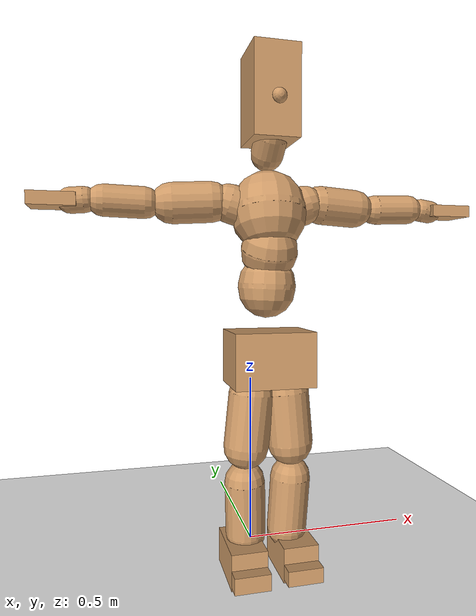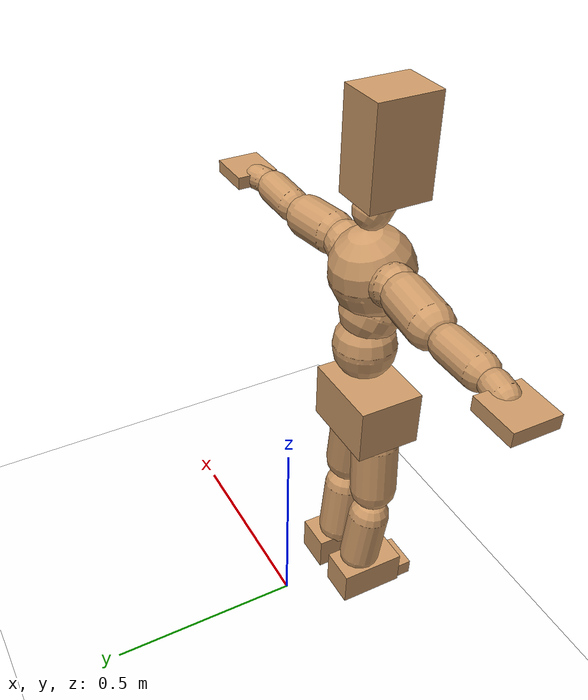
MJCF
<mujoco model="humanoid">
  <option integrator="implicitfast" />

  <visual>
    <global offwidth="1280" offheight="960" />
    <headlight active="1" ambient="0.34 0.34 0.34" diffuse="0.5 0.5 0.5" />
  </visual>

  <default>
    <joint damping="2" stiffness="2" armature="0.01" limited="true" solimplimit="0 .99 .01" />
    <geom condim="1" friction="0.7 0.005 0.0001" solimp=".99 .99 .003" solref="0.015 1" margin="0.001" rgba="0.8 0.6 .4 1" />
    <default class="smplcontact">
      <geom condim="3" friction="1. 0.005 0.0001" solref="0.015 1" solimp="0.98 0.98 0.001" priority="1" />
    </default>
    <default class="stiff_medium">
      <joint stiffness="10" />
    </default>
    <default class="stiff_medium_higher">
      <joint stiffness="50" />
    </default>
    <default class="stiff_high">
      <joint stiffness="100" />
    </default>
  </default>

  <asset>
    <texture type="skybox" builtin="gradient" rgb1="0.99 0.99 0.99" rgb2="0.608 0.828 0.892" width="100" />
    <texture builtin="flat" height="1278" mark="cross" markrgb="1 1 1" name="texgeom" random="0.01" rgb1="0.8 0.6 0.4" rgb2="0.8 0.6 0.4" type="cube" width="127" />
    <texture name="texplane" type="2d" builtin="checker" markrgb="1 1 1" rgb1="0.756 0.772 0.76" rgb2="0.6 0.6 0.6" width="100" height="100" />
    <material name="MatPlane" reflectance="0.5" texture="texplane" texrepeat="1 1" texuniform="true" />
    <material name="geom" texture="texgeom" texuniform="true" />
  </asset>

  <worldbody>
    <light name="tracking_light" pos="0 0 7" dir="0 0 -1" directional="true" cutoff="100" exponent="1" diffuse="1 1 1" specular="0.1 0.1 0.1" mode="trackcom" />
    <camera name="back" pos="0 3 2.4" xyaxes="-1 0 0 0 -1 2" mode="trackcom" />
    <camera name="side" pos="-3 0 2.4" xyaxes="0 -1 0 1 0 2" mode="trackcom" />
    <camera name="front_side" pos="-2.8 -2.8 0.8" xyaxes="0.5 -0.5 0 0.1 0.1 1" mode="trackcom" />
    <geom condim="3" name="floor" pos="0 0 0" rgba="1 1 1 1" size="100 100 .2" type="plane" material="MatPlane" />
    <body name="Pelvis" pos="-0.0018 -0.2233 0.603363" euler="90 0 0">
      <site name="Pelvis" size="0.01" />
      <freejoint name="Pelvis" />
      <geom type="box" pos="-0.0000 -0.0121 -0.0055" size="0.1069 0.0722 0.083" quat="1.0000 0.0000 0.0000 0.0000" density="3165.830099" name="Pelvis" />
      <body name="L_Hip" pos="0.0434375 -0.057125 -0.00425">
        <joint name="L_Hip_x" type="hinge" pos="0 0 0" axis="1 0 0" stiffness="4.682612346938775" range="-160.0 22.92" class="stiff_medium" damping="5.761376063259234" armature="0.003150516248715215"/>
        <joint name="L_Hip_y" type="hinge" pos="0 0 0" axis="0 1 0" stiffness="4.729285204081632" range="-70.0 70.0" class="stiff_medium" damping="5.227190951440424" armature="0.005777516910851337"/>
        <joint name="L_Hip_z" type="hinge" pos="0 0 0" axis="0 0 1" stiffness="4.725288673469388" range="-28.65 90.0" class="stiff_medium" damping="3.855798953286389" armature="0.003146302077085308"/>
        <geom type="capsule" density="2040.816327" fromto="0.0043125 -0.046875 -0.0005625 0.017125 -0.187625 -0.00225" size="0.0615" name="L_Hip" />
        <body name="L_Knee" pos="0.0214375 -0.2345 -0.0028125">
          <joint name="L_Knee_x" type="hinge" pos="0 0 0" axis="1 0 0" range="-5.16 171.89" damping="3.3147767653831246" armature="0.0034682055009749293" stiffness="0.9900423469387756"/>
          <joint name="L_Knee_y" type="hinge" pos="0 0 0" axis="0 1 0" range="-4.58 6.88" damping="4.406653617352896" armature="0.006327520325715417" stiffness="0.9590346565349543"/>
          <joint name="L_Knee_z" type="hinge" pos="0 0 0" axis="0 0 1" range="-6.88 4.58" damping="3.3272526227236505" armature="0.003445606353385673" stiffness="1.0040513265306124"/>
          <geom type="capsule" density="1234.567901" fromto="-0.0016875 -0.04975 -0.0054375 -0.0068125 -0.199 -0.021875" size="0.0541" name="L_Knee" />
          <body name="L_Ankle" pos="-0.0085 -0.24875 -0.0273125">
            <joint name="L_Ankle_x" type="hinge" pos="0 0 0" axis="1 0 0" range="-45.84 45.84" class="stiff_medium" damping="3.6717736084900476" armature="0.00599196508089068" stiffness="6.25"/>
            <joint name="L_Ankle_y" type="hinge" pos="0 0 0" axis="0 1 0" range="-74.48 22.92" class="stiff_medium" damping="1.858589102984691" armature="0.006141072806637225" stiffness="6.25"/>
            <joint name="L_Ankle_z" type="hinge" pos="0 0 0" axis="0 0 1" range="-4.58 4.58" class="stiff_medium" damping="4.001717943795376" armature="0.007117220667419511" stiffness="6.25"/>
            <geom type="box" pos="0.0145625 -0.0149375 0.015125" size="0.0483 0.0464 0.085" quat="1.0000 0.0000 0.0000 0.0000" density="449.071558" name="L_Ankle" class="smplcontact" />
            <body name="L_Toe" pos="0.0165 -0.034875 0.0745625">
              <joint name="L_Toe_x" type="hinge" pos="0 0 0" axis="1 0 0" range="-91.67 22.92" armature="0.007683229914737104" damping="1.3859319891987039" stiffness="1.25"/>
              <joint name="L_Toe_y" type="hinge" pos="0 0 0" axis="0 1 0" range="-4.58 4.58" armature="0.008367648440754674" damping="1.446344395428927" stiffness="1.25"/>
              <joint name="L_Toe_z" type="hinge" pos="0 0 0" axis="0 0 1" range="-4.58 4.58" armature="0.009751505861704231" damping="1.5613700603719984" stiffness="1.25"/>
              <geom type="box" pos="-0.001875 0.0034375 0.0155" size="0.0478 0.02 0.0496" quat="1.0000 0.0000 0.0000 0.0000" density="423.206892" name="L_Toe" class="smplcontact" />
            </body>
          </body>
        </body>
      </body>
      <body name="R_Hip" pos="-0.0423125 -0.0565625 -0.0026875">
        <joint name="R_Hip_x" type="hinge" pos="0 0 0" axis="1 0 0" stiffness="4.682612346938775" range="-160.0 22.92" class="stiff_medium" damping="5.761376063259234" armature="0.003150516248715215"/>
        <joint name="R_Hip_y" type="hinge" pos="0 0 0" axis="0 1 0" stiffness="4.729285204081632" range="-70.0 70.0" class="stiff_medium" damping="5.227190951440424" armature="0.005777516910851337"/>
        <joint name="R_Hip_z" type="hinge" pos="0 0 0" axis="0 0 1" stiffness="4.725288673469388" range="-90.0 28.65" class="stiff_medium" damping="3.855798953286389" armature="0.003146302077085308"/>
        <geom type="capsule" density="2040.816327" fromto="-0.0048125 -0.0478125 -0.001125 -0.019125 -0.191312 -0.0044375" size="0.0606" name="R_Hip" />
        <body name="R_Knee" pos="-0.0239375 -0.239125 -0.0055625">
          <joint name="R_Knee_x" type="hinge" pos="0 0 0" axis="1 0 0" range="-5.16 171.89" damping="3.3147767653831246" armature="0.0034682055009749293" stiffness="0.9900423469387756"/>
          <joint name="R_Knee_y" type="hinge" pos="0 0 0" axis="0 1 0" range="-6.88 4.58" damping="4.406653617352896" armature="0.006327520325715417" stiffness="0.9590346565349543"/>
          <joint name="R_Knee_z" type="hinge" pos="0 0 0" axis="0 0 1" range="-4.58 6.88" damping="3.3272526227236505" armature="0.003445606353385673" stiffness="1.0040513265306124"/>
          <geom type="capsule" density="1234.567901" fromto="0.002 -0.0498125 -0.0053125 0.007875 -0.199187 -0.021125" size="0.0541" name="R_Knee" />
          <body name="R_Ankle" pos="0.009875 -0.249 -0.0264375">
            <joint name="R_Ankle_x" type="hinge" pos="0 0 0" axis="1 0 0" range="-45.84 45.84" class="stiff_medium" damping="3.6717736084900476" armature="0.00599196508089068" stiffness="6.25"/>
            <joint name="R_Ankle_y" type="hinge" pos="0 0 0" axis="0 1 0" range="-22.92 74.48" class="stiff_medium" damping="1.858589102984691" armature="0.006141072806637225" stiffness="6.25"/>
            <joint name="R_Ankle_z" type="hinge" pos="0 0 0" axis="0 0 1" range="-4.58 4.58" class="stiff_medium" damping="4.001717943795376" armature="0.007117220667419511" stiffness="6.25"/>
            <geom type="box" pos="-0.01325 -0.010875 0.016" size="0.0483 0.0478 0.0865" quat="1.0000 0.0000 0.0000 0.0000" density="434.700981" name="R_Ankle" class="smplcontact" />
            <body name="R_Toe" pos="-0.015875 -0.0300625 0.0770625">
              <joint name="R_Toe_x" type="hinge" pos="0 0 0" axis="1 0 0" range="-91.67 22.92" armature="0.007683229914737104" damping="1.3859319891987039" stiffness="1.25"/>
              <joint name="R_Toe_y" type="hinge" pos="0 0 0" axis="0 1 0" range="-4.58 4.58" armature="0.008367648440754674" damping="1.446344395428927" stiffness="1.25"/>
              <joint name="R_Toe_z" type="hinge" pos="0 0 0" axis="0 0 1" range="-4.58 4.58" armature="0.009751505861704231" damping="1.5613700603719984" stiffness="1.25"/>
              <geom type="box" pos="0.002625 0.0028125 0.0141875" size="0.0479 0.0216 0.0493" quat="1.0000 0.0000 0.0000 0.0000" density="407.384095" name="R_Toe" class="smplcontact" />
            </body>
          </body>
        </body>
      </body>
      <body name="Torso" pos="-0.0025 0.109 -0.0267">
        <joint name="Torso_x" type="hinge" pos="0 0 0" axis="1 0 0" range="-25.78 57.3" class="stiff_medium" damping="13.296564125699916" armature="0.008717287887859703" stiffness="9.01394612244898"/>
        <joint name="Torso_y" type="hinge" pos="0 0 0" axis="0 1 0" range="-57.3 57.3" class="stiff_high" damping="11.857975578739207" armature="0.003844721181114158" stiffness="91.43158775510203"/>
        <joint name="Torso_z" type="hinge" pos="0 0 0" axis="0 0 1" range="-34.38 34.38" class="stiff_high" damping="16.193220219297853" armature="0.00704558329980234" stiffness="93.0442413043478"/>
        <geom type="capsule" density="2040.816327" fromto="0.0025 0.0608 0.0005 0.003 0.0743 0.0006" size="0.0769" name="Torso" />
        <body name="Spine" pos="0.0055 0.1352 0.0011">
          <joint name="Spine_x" type="hinge" pos="0 0 0" axis="1 0 0" stiffness="8.855082083333333" range="-25.78 57.3" class="stiff_medium" damping="13.076797677453996" armature="0.008582774445870417"/>
          <joint name="Spine_y" type="hinge" pos="0 0 0" axis="0 1 0" stiffness="8.966550425531915" range="-57.3 57.3" class="stiff_high" damping="4.670538649446806" armature="0.003801268715520681"/>
          <joint name="Spine_z" type="hinge" pos="0 0 0" axis="0 0 1" stiffness="17.399179999999998" range="-34.38 34.38" class="stiff_high" damping="8.612389288095057" armature="0.005920876830729194"/>
          <geom type="capsule" density="2040.816327" fromto="0.0007 0.0238 0.0114 0.0008 0.0291 0.014" size="0.0755" name="Spine" />
          <body name="Chest" pos="0.0015 0.0529 0.0254">
            <joint name="Chest_x" type="hinge" pos="0 0 0" axis="1 0 0" stiffness="8.445605217391304" range="-25.78 57.3" class="stiff_medium" damping="12.725283601188007" armature="0.008521609816255422"/>
            <joint name="Chest_y" type="hinge" pos="0 0 0" axis="0 1 0" stiffness="7.416513142857141" range="-57.3 57.3" class="stiff_high" damping="4.235867490218071" armature="0.003780114777548562"/>
            <joint name="Chest_z" type="hinge" pos="0 0 0" axis="0 0 1" stiffness="17.461715111111108" range="-34.38 34.38" class="stiff_high" damping="8.265316118618488" armature="0.005433748608980236"/>
            <geom type="capsule" density="2040.816327" fromto="-0.0009 0.0682 -0.0173 -0.001 0.0833 -0.0212" size="0.1002" name="Chest" />
            <body name="Neck" pos="-0.0028 0.2139 -0.0429">
              <joint name="Neck_x" type="hinge" pos="0 0 0" axis="1 0 0" range="-28.65 57.3" class="stiff_medium_higher" damping="10.000000000000007" armature="0.010000000000000016" stiffness="50.0"/>
              <joint name="Neck_y" type="hinge" pos="0 0 0" axis="0 1 0" range="-40.11 40.11" class="stiff_medium_higher" damping="10.0" armature="0.01" stiffness="50.0"/>
              <joint name="Neck_z" type="hinge" pos="0 0 0" axis="0 0 1" range="-40.11 40.11" class="stiff_medium_higher" damping="10.000000000000004" armature="0.01000000000000001" stiffness="50.0"/>
              <geom type="capsule" density="1000" fromto="0.001 0.013 0.0103 0.0041 0.052 0.0411" size="0.0436" name="Neck" />
              <body name="Head" pos="0.0052 0.065 0.0513">
                <joint name="Head_x" type="hinge" pos="0 0 0" axis="1 0 0" range="-28.65 57.3" class="stiff_medium_higher" damping="2.0000000000000027" armature="0.010000000000000026" stiffness="50.0"/>
                <joint name="Head_y" type="hinge" pos="0 0 0" axis="0 1 0" range="-40.11 40.11" class="stiff_medium_higher" damping="1.9999999999999998" armature="0.009999999999999998" stiffness="50.0"/>
                <joint name="Head_z" type="hinge" pos="0 0 0" axis="0 0 1" range="-40.11 40.11" class="stiff_medium_higher" damping="2.0000000000000018" armature="0.010000000000000021" stiffness="50.0"/>
                <geom type="box" pos="-0.0042 0.0876 -0.0116" size="0.0606 0.1154 0.076" quat="1.0000 0.0000 0.0000 0.0000" density="1018.069894" name="Head" />
                <geom type="capsule" name="nose" size="0.02 0.01" pos="0 0.07 0.05" quat="1 0 0 0" mass="0" contype="0" conaffinity="0" />
              </body>
            </body>
            <body name="L_Thorax" pos="0.052205 0.0806262 -0.0225912">
              <joint name="L_Thorax_x" type="hinge" pos="0 0 0" axis="1 0 0" range="-10.89 4.58" class="stiff_medium_higher" damping="10.752161019344737" armature="0.005492534491244054" stiffness="26.310478061224497"/>
              <joint name="L_Thorax_y" type="hinge" pos="0 0 0" axis="0 1 0" range="-28.65 17.19" class="stiff_medium_higher" damping="8.656507675839675" armature="0.0035990909186137975" stiffness="26.025712755102038"/>
              <joint name="L_Thorax_z" type="hinge" pos="0 0 0" axis="0 0 1" range="-31.51 40.11" class="stiff_medium_higher" damping="8.654936190408643" armature="0.003597349455452554" stiffness="26.02885867346939"/>
              <geom type="capsule" density="1000" fromto="0.0120575 0.00404125 -0.0011925 0.04823 0.016165 -0.00470375" size="0.0521" name="L_Thorax" />
              <body name="L_Shoulder" pos="0.0602875 0.0202062 -0.00589625">
                <joint name="L_Shoulder_x" type="hinge" pos="0 0 0" axis="1 0 0" range="-97.4 97.4" class="stiff_medium" damping="3.4355706113714577" armature="0.006181474178058801" stiffness="5.3039961224489796"/>
                <joint name="L_Shoulder_y" type="hinge" pos="0 0 0" axis="0 1 0" range="-108.86 80.21" class="stiff_medium" damping="2.6194672785690365" armature="0.003646930251057189" stiffness="5.226319999999999"/>
                <joint name="L_Shoulder_z" type="hinge" pos="0 0 0" axis="0 0 1" range="-97.4 85.94" class="stiff_medium" damping="2.6197349169276203" armature="0.003644479893049838" stiffness="5.230902653061225"/>
                <geom type="capsule" density="1000" fromto="0.0343837 -0.0017225 -0.00364375 0.137601 -0.0067575 -0.014575" size="0.0517" name="L_Shoulder" />
                <body name="L_Elbow" pos="0.171985 -0.00848 -0.0182187">
                  <joint name="L_Elbow_x" type="hinge" pos="0 0 0" axis="1 0 0" range="-17.19 4.58" damping="3.1785577743547293" armature="0.007393662378868944" stiffness="1.0931772653061227"/>
                  <joint name="L_Elbow_y" type="hinge" pos="0 0 0" axis="0 1 0" range="-180.0 17.19" damping="2.3033030607353284" armature="0.003885042260915375" stiffness="1.0924370204081633"/>
                  <joint name="L_Elbow_z" type="hinge" pos="0 0 0" axis="0 0 1" range="-100.84 4.58" damping="2.300811432859375" armature="0.0038721783452337257" stiffness="1.0936961632653062"/>
                  <geom type="capsule" density="1000" fromto="0.0329925 0.0011925 -0.0001325 0.132102 0.00477 -0.00059625" size="0.0405" name="L_Elbow" />
                  <body name="L_Wrist" pos="0.165095 0.0059625 -0.000795">
                    <joint name="L_Wrist_x" type="hinge" pos="0 0 0" axis="1 0 0" range="-180.0 22.92" armature="0.008001427855743315" damping="1.410962269656013" stiffness="1.2440370408163264"/>
                    <joint name="L_Wrist_y" type="hinge" pos="0 0 0" axis="0 1 0" range="-17.19 17.19" armature="0.004879471429003413" damping="1.0965644446974459" stiffness="1.2321555714285712"/>
                    <joint name="L_Wrist_z" type="hinge" pos="0 0 0" axis="0 0 1" range="-22.92 22.92" armature="0.004698864868438853" damping="1.0781698402208897" stiffness="1.2369478979591837"/>
                    <geom type="capsule" density="1000" fromto="0.01113 -0.00106 -0.0019875 0.04452 -0.00430625 -0.00795" size="0.0318" name="L_Wrist" class="smplcontact" />
                    <body name="L_Hand" pos="0.05565 -0.0054325 -0.00987125">
                      <joint name="L_Hand_x" type="hinge" pos="0 0 0" axis="1 0 0" range="-17.19 17.19" armature="0.009755552996203863" damping="1.6078618449167748" stiffness="1.3249990612244895"/>
                      <joint name="L_Hand_y" type="hinge" pos="0 0 0" axis="0 1 0" range="-51.57 51.57" armature="0.007043747166286096" damping="1.3662326477640472" stiffness="1.3249990408163264"/>
                      <joint name="L_Hand_z" type="hinge" pos="0 0 0" axis="0 0 1" range="-91.67 91.67" armature="0.006320878329522855" damping="1.2942300773617843" stiffness="1.3249989999999998"/>
                      <geom type="box" pos="0.0326612 0.0006625 -0.0038425" size="0.0585 0.0158 0.0538" quat="1.0000 0.0000 0.0000 0.0000" density="400.552564" name="L_Hand" class="smplcontact" />
                    </body>
                  </body>
                </body>
              </body>
            </body>
            <body name="R_Thorax" pos="-0.0541925 0.078705 -0.0255725">
              <joint name="R_Thorax_x" type="hinge" pos="0 0 0" axis="1 0 0" range="-10.89 4.58" class="stiff_medium_higher" damping="10.752161019344737" armature="0.005492534491244054" stiffness="26.310478061224497"/>
              <joint name="R_Thorax_y" type="hinge" pos="0 0 0" axis="0 1 0" range="-17.19 28.65" class="stiff_medium_higher" damping="8.656507675839675" armature="0.0035990909186137975" stiffness="26.025712755102038"/>
              <joint name="R_Thorax_z" type="hinge" pos="0 0 0" axis="0 0 1" range="-40.11 31.51" class="stiff_medium_higher" damping="8.654936190408643" armature="0.003597349455452554" stiffness="26.02885867346939"/>
              <geom type="capsule" density="1000" fromto="-0.01272 0.00430625 -0.0011925 -0.05088 0.017225 -0.00483625" size="0.0511" name="R_Thorax" />
              <body name="R_Shoulder" pos="-0.0636 0.0215975 -0.00602875">
                <joint name="R_Shoulder_x" type="hinge" pos="0 0 0" axis="1 0 0" range="-97.4 97.4" class="stiff_medium" damping="3.4355706113714577" armature="0.006181474178058801" stiffness="5.3039961224489796"/>
                <joint name="R_Shoulder_y" type="hinge" pos="0 0 0" axis="0 1 0" range="-80.21 108.86" class="stiff_medium" damping="2.6194672785690365" armature="0.003646930251057189" stiffness="5.226319999999999"/>
                <joint name="R_Shoulder_z" type="hinge" pos="0 0 0" axis="0 0 1" range="-85.94 97.4" class="stiff_medium" damping="2.6197349169276203" armature="0.003644479893049838" stiffness="5.230902653061225"/>
                <geom type="capsule" density="1000" fromto="-0.0335888 -0.00178875 -0.00284875 -0.134488 -0.00708875 -0.0113288" size="0.0531" name="R_Shoulder" />
                <body name="R_Elbow" pos="-0.168076 -0.00881125 -0.0141775">
                  <joint name="R_Elbow_x" type="hinge" pos="0 0 0" axis="1 0 0" range="-17.19 4.58" damping="3.1785577743547293" armature="0.007393662378868944" stiffness="1.0931772653061227"/>
                  <joint name="R_Elbow_y" type="hinge" pos="0 0 0" axis="0 1 0" range="-17.19 180.0" damping="2.3033030607353284" armature="0.003885042260915375" stiffness="1.0924370204081633"/>
                  <joint name="R_Elbow_z" type="hinge" pos="0 0 0" axis="0 0 1" range="-4.58 100.84" damping="2.300811432859375" armature="0.0038721783452337257" stiffness="1.0936961632653062"/>
                  <geom type="capsule" density="1000" fromto="-0.0338538 0.00106 -0.00072875 -0.135282 0.0041075 -0.002915" size="0.0408" name="R_Elbow" />
                  <body name="R_Wrist" pos="-0.169136 0.0051675 -0.00371">
                    <joint name="R_Wrist_x" type="hinge" pos="0 0 0" axis="1 0 0" range="-180.0 22.92" armature="0.008001427855743315" damping="1.410962269656013" stiffness="1.2440370408163264"/>
                    <joint name="R_Wrist_y" type="hinge" pos="0 0 0" axis="0 1 0" range="-17.19 17.19" armature="0.004879471429003413" damping="1.0965644446974459" stiffness="1.2321555714285712"/>
                    <joint name="R_Wrist_z" type="hinge" pos="0 0 0" axis="0 0 1" range="-22.92 22.92" armature="0.004698864868438853" damping="1.0781698402208897" stiffness="1.2369478979591837"/>
                    <geom type="capsule" density="1000" fromto="-0.0111962 -0.000795 -0.00139125 -0.0448512 -0.00324625 -0.00549875" size="0.0326" name="R_Wrist" class="smplcontact" />
                    <body name="R_Hand" pos="-0.0560475 -0.00404125 -0.00682375">
                      <joint name="R_Hand_x" type="hinge" pos="0 0 0" axis="1 0 0" range="-17.19 17.19" armature="0.009755552996203863" damping="1.6078618449167748" stiffness="1.3249990612244895"/>
                      <joint name="R_Hand_y" type="hinge" pos="0 0 0" axis="0 1 0" range="-51.57 51.57" armature="0.007043747166286096" damping="1.3662326477640472" stiffness="1.3249990408163264"/>
                      <joint name="R_Hand_z" type="hinge" pos="0 0 0" axis="0 0 1" range="-91.67 91.67" armature="0.006320878329522855" damping="1.2942300773617843" stiffness="1.3249989999999998"/>
                      <geom type="box" pos="-0.0306075 -0.00059625 -0.00523375" size="0.0569 0.0164 0.0546" quat="1.0000 0.0000 0.0000 0.0000" density="403.679611" name="R_Hand" class="smplcontact" />
                    </body>
                  </body>
                </body>
              </body>
            </body>
          </body>
        </body>
      </body>
    </body>
  </worldbody>
  <actuator>
    <general name="L_Hip_x" joint="L_Hip_x" biastype="affine" gainprm="134.5455305788832" biasprm="-100.82823820114426 -84.28702224489795 -0.7681834751012312" ctrllimited="true" ctrlrange="-1 1" forcerange="-168.5740444897959 168.5740444897959" />
    <general name="L_Hip_y" joint="L_Hip_y" biastype="affine" gainprm="104.00241357711633" biasprm="0.0 -85.12713367346939 -1.0454381902880847" ctrllimited="true" ctrlrange="-1 1" forcerange="-170.25426734693878 170.25426734693878" />
    <general name="L_Hip_z" joint="L_Hip_z" biastype="affine" gainprm="88.0675601736452" biasprm="45.53682947031718 -85.05519612244898 -0.7711597906572778" ctrllimited="true" ctrlrange="-1 1" forcerange="-170.11039224489795 170.11039224489795" />
    <general name="L_Knee_x" joint="L_Knee_x" biastype="affine" gainprm="137.6700859239888" biasprm="129.64548673316378 -89.1038112244898 -0.8286941913457812" ctrllimited="true" ctrlrange="-1 1" forcerange="-178.2076224489796 178.2076224489796" />
    <general name="L_Knee_y" joint="L_Knee_y" biastype="affine" gainprm="8.63194770327106" biasprm="1.7324153331172283 -86.3131190881459 -1.101663404338224" ctrllimited="true" ctrlrange="-1 1" forcerange="-172.6262381762918 172.6262381762918" />
    <general name="L_Knee_z" joint="L_Knee_z" biastype="affine" gainprm="9.03712757714746" biasprm="-1.8137341559720035 -90.36461938775511 -0.8318131556809126" ctrllimited="true" ctrlrange="-1 1" forcerange="-180.72923877551023 180.72923877551023" />
    <general name="L_Ankle_x" joint="L_Ankle_x" biastype="affine" gainprm="45.003314762673796" biasprm="0.0 -56.25 -1.2239245361633493" ctrllimited="true" ctrlrange="-1 1" forcerange="-112.5 112.5" />
    <general name="L_Ankle_y" joint="L_Ankle_y" biastype="affine" gainprm="47.811113196819676" biasprm="-25.309455815482774 -56.25 -1.239059401989794" ctrllimited="true" ctrlrange="-1 1" forcerange="-112.5 112.5" />
    <general name="L_Ankle_z" joint="L_Ankle_z" biastype="affine" gainprm="4.496404485450391" biasprm="0.0 -56.25 -1.3339059812651255" ctrllimited="true" ctrlrange="-1 1" forcerange="-112.5 112.5" />
    <general name="L_Toe_x" joint="L_Toe_x" biastype="affine" gainprm="44.999387771856796" biasprm="-26.998061866787282 -45.0 -0.5543727956794816" ctrllimited="true" ctrlrange="-1 1" forcerange="-90.0 90.0" />
    <general name="L_Toe_y" joint="L_Toe_y" biastype="affine" gainprm="3.597123588360313" biasprm="0.0 -45.0 -0.5785377581715708" ctrllimited="true" ctrlrange="-1 1" forcerange="-90.0 90.0" />
    <general name="L_Toe_z" joint="L_Toe_z" biastype="affine" gainprm="3.597123588360313" biasprm="0.0 -45.0 -0.6245480241487994" ctrllimited="true" ctrlrange="-1 1" forcerange="-90.0 90.0" />
    <general name="R_Hip_x" joint="R_Hip_x" biastype="affine" gainprm="134.5455305788832" biasprm="-100.82823820114426 -84.28702224489795 -0.7681834751012312" ctrllimited="true" ctrlrange="-1 1" forcerange="-168.5740444897959 168.5740444897959" />
    <general name="R_Hip_y" joint="R_Hip_y" biastype="affine" gainprm="104.00241357711633" biasprm="0.0 -85.12713367346939 -1.0454381902880847" ctrllimited="true" ctrlrange="-1 1" forcerange="-170.25426734693878 170.25426734693878" />
    <general name="R_Hip_z" joint="R_Hip_z" biastype="affine" gainprm="88.0675601736452" biasprm="-45.53682947031718 -85.05519612244898 -0.7711597906572778" ctrllimited="true" ctrlrange="-1 1" forcerange="-170.11039224489795 170.11039224489795" />
    <general name="R_Knee_x" joint="R_Knee_x" biastype="affine" gainprm="137.6700859239888" biasprm="129.64548673316378 -89.1038112244898 -0.8286941913457812" ctrllimited="true" ctrlrange="-1 1" forcerange="-178.2076224489796 178.2076224489796" />
    <general name="R_Knee_y" joint="R_Knee_y" biastype="affine" gainprm="8.63194770327106" biasprm="-1.7324153331172283 -86.3131190881459 -1.101663404338224" ctrllimited="true" ctrlrange="-1 1" forcerange="-172.6262381762918 172.6262381762918" />
    <general name="R_Knee_z" joint="R_Knee_z" biastype="affine" gainprm="9.03712757714746" biasprm="1.8137341559720035 -90.36461938775511 -0.8318131556809126" ctrllimited="true" ctrlrange="-1 1" forcerange="-180.72923877551023 180.72923877551023" />
    <general name="R_Ankle_x" joint="R_Ankle_x" biastype="affine" gainprm="45.003314762673796" biasprm="0.0 -56.25 -1.2239245361633493" ctrllimited="true" ctrlrange="-1 1" forcerange="-112.5 112.5" />
    <general name="R_Ankle_y" joint="R_Ankle_y" biastype="affine" gainprm="47.811113196819676" biasprm="25.309455815482774 -56.25 -1.239059401989794" ctrllimited="true" ctrlrange="-1 1" forcerange="-112.5 112.5" />
    <general name="R_Ankle_z" joint="R_Ankle_z" biastype="affine" gainprm="4.496404485450391" biasprm="0.0 -56.25 -1.3339059812651255" ctrllimited="true" ctrlrange="-1 1" forcerange="-112.5 112.5" />
    <general name="R_Toe_x" joint="R_Toe_x" biastype="affine" gainprm="44.999387771856796" biasprm="-26.998061866787282 -45.0 -0.5543727956794816" ctrllimited="true" ctrlrange="-1 1" forcerange="-90.0 90.0" />
    <general name="R_Toe_y" joint="R_Toe_y" biastype="affine" gainprm="3.597123588360313" biasprm="0.0 -45.0 -0.5785377581715708" ctrllimited="true" ctrlrange="-1 1" forcerange="-90.0 90.0" />
    <general name="R_Toe_z" joint="R_Toe_z" biastype="affine" gainprm="3.597123588360313" biasprm="0.0 -45.0 -0.6245480241487994" ctrllimited="true" ctrlrange="-1 1" forcerange="-90.0 90.0" />
    <general name="Torso_x" joint="Torso_x" biastype="affine" gainprm="156.84477639727098" biasprm="59.505866057318 -216.33470693877553 -3.5457504335199777" ctrllimited="true" ctrlrange="-1 1" forcerange="-324.5020604081633 324.5020604081633" />
    <general name="Torso_y" joint="Torso_y" biastype="affine" gainprm="219.45197455967397" biasprm="0.0 -219.43581061224486 -2.3715951157478417" ctrllimited="true" ctrlrange="-1 1" forcerange="-329.1537159183673 329.1537159183673" />
    <general name="Torso_z" joint="Torso_z" biastype="affine" gainprm="133.99357690475964" biasprm="0.0 -223.30617913043474 -3.2386440438595705" ctrllimited="true" ctrlrange="-1 1" forcerange="-334.9592686956521 334.9592686956521" />
    <general name="Spine_x" joint="Spine_x" biastype="affine" gainprm="154.08050486134445" biasprm="58.457119802955894 -212.52197 -3.4871460473210654" ctrllimited="true" ctrlrange="-1 1" forcerange="-318.782955 318.782955" />
    <general name="Spine_y" joint="Spine_y" biastype="affine" gainprm="215.21306193898633" biasprm="0.0 -215.19721021276595 -2.335269324723403" ctrllimited="true" ctrlrange="-1 1" forcerange="-322.7958153191489 322.7958153191489" />
    <general name="Spine_z" joint="Spine_z" biastype="affine" gainprm="125.28332386438697" biasprm="0.0 -208.79016 -2.870796429365019" ctrllimited="true" ctrlrange="-1 1" forcerange="-313.18523999999996 313.18523999999996" />
    <general name="Chest_x" joint="Chest_x" biastype="affine" gainprm="146.95551136725376" biasprm="55.753944611168 -202.69452521739132 -3.393408960316802" ctrllimited="true" ctrlrange="-1 1" forcerange="-304.04178782608693 304.04178782608693" />
    <general name="Chest_y" joint="Chest_y" biastype="affine" gainprm="178.00942688507038" biasprm="0.0 -177.9963154285714 -2.1179337451090356" ctrllimited="true" ctrlrange="-1 1" forcerange="-266.9944731428571 266.9944731428571" />
    <general name="Chest_z" joint="Chest_z" biastype="affine" gainprm="125.7336098306353" biasprm="0.0 -209.5405813333333 -2.7551053728728294" ctrllimited="true" ctrlrange="-1 1" forcerange="-314.31087199999996 314.31087199999996" />
    <general name="Neck_x" joint="Neck_x" biastype="affine" gainprm="27.00198885760427" biasprm="9.000662952534757 -36.0 -0.8000000000000006" ctrllimited="true" ctrlrange="-1 1" forcerange="-72.0 72.0" />
    <general name="Neck_y" joint="Neck_y" biastype="affine" gainprm="25.20185626709732" biasprm="0.0 -36.0 -0.8" ctrllimited="true" ctrlrange="-1 1" forcerange="-72.0 72.0" />
    <general name="Neck_z" joint="Neck_z" biastype="affine" gainprm="25.20185626709732" biasprm="0.0 -36.0 -0.8000000000000004" ctrllimited="true" ctrlrange="-1 1" forcerange="-72.0 72.0" />
    <general name="Head_x" joint="Head_x" biastype="affine" gainprm="18.001325905069514" biasprm="6.000441968356505 -24.0 -0.8000000000000012" ctrllimited="true" ctrlrange="-1 1" forcerange="-48.0 48.0" />
    <general name="Head_y" joint="Head_y" biastype="affine" gainprm="16.801237511398213" biasprm="0.0 -24.0 -0.7999999999999999" ctrllimited="true" ctrlrange="-1 1" forcerange="-48.0 48.0" />
    <general name="Head_z" joint="Head_z" biastype="affine" gainprm="16.801237511398213" biasprm="0.0 -24.0 -0.8000000000000007" ctrllimited="true" ctrlrange="-1 1" forcerange="-48.0 48.0" />
    <general name="L_Thorax_x" joint="L_Thorax_x" biastype="affine" gainprm="8.524671780005175" biasprm="-3.4770962464015946 -63.14514734693879 -0.860172881547579" ctrllimited="true" ctrlrange="-1 1" forcerange="-126.29029469387758 126.29029469387758" />
    <general name="L_Thorax_y" joint="L_Thorax_y" biastype="affine" gainprm="24.98652465153687" biasprm="-6.246631162884218 -62.461710612244886 -0.692520614067174" ctrllimited="true" ctrlrange="-1 1" forcerange="-124.92342122448977 124.92342122448977" />
    <general name="L_Thorax_z" joint="L_Thorax_z" biastype="affine" gainprm="39.04343825747016" biasprm="4.688265414887508 -62.46926081632654 -0.6923948952326915" ctrllimited="true" ctrlrange="-1 1" forcerange="-124.93852163265308 124.93852163265308" />
    <general name="L_Shoulder_x" joint="L_Shoulder_x" biastype="affine" gainprm="43.279353003673734" biasprm="0.0 -25.459181387755102 -0.9161521630323888" ctrllimited="true" ctrlrange="-1 1" forcerange="-50.918362775510204 50.918362775510204" />
    <general name="L_Shoulder_y" joint="L_Shoulder_y" biastype="affine" gainprm="41.39112503423586" biasprm="-6.272045973612193 -25.086336 -0.6985246076184097" ctrllimited="true" ctrlrange="-1 1" forcerange="-50.172672 50.172672" />
    <general name="L_Shoulder_z" joint="L_Shoulder_z" biastype="affine" gainprm="40.171909368365355" biasprm="-2.511018224945282 -25.108332734693878 -0.6985959778473655" ctrllimited="true" ctrlrange="-1 1" forcerange="-50.216665469387756 50.216665469387756" />
    <general name="L_Elbow_x" joint="L_Elbow_x" biastype="affine" gainprm="7.476509558353197" biasprm="-4.330674576519699 -39.35438155102042 -0.5085692438967567" ctrllimited="true" ctrlrange="-1 1" forcerange="-78.70876310204083 78.70876310204083" />
    <general name="L_Elbow_y" joint="L_Elbow_y" biastype="affine" gainprm="67.67545257136767" biasprm="-55.87626367028943 -39.327732734693875 -0.3685284897176526" ctrllimited="true" ctrlrange="-1 1" forcerange="-78.65546546938775 78.65546546938775" />
    <general name="L_Elbow_z" joint="L_Elbow_z" biastype="affine" gainprm="36.22176204255759" biasprm="-33.07443382865295 -39.373061877551024 -0.3681298292575" ctrllimited="true" ctrlrange="-1 1" forcerange="-78.74612375510205 78.74612375510205" />
    <general name="L_Wrist_x" joint="L_Wrist_x" biastype="affine" gainprm="13.217727298647333" biasprm="-10.231818470685607 -7.464222244897958 -0.5643849078624051" ctrllimited="true" ctrlrange="-1 1" forcerange="-14.928444489795917 14.928444489795917" />
    <general name="L_Wrist_y" joint="L_Wrist_y" biastype="affine" gainprm="2.2180434007032876" biasprm="0.0 -7.392933428571427 -0.4386257778789784" ctrllimited="true" ctrlrange="-1 1" forcerange="-14.785866857142855 14.785866857142855" />
    <general name="L_Wrist_z" joint="L_Wrist_z" biastype="affine" gainprm="2.9688936318338586" biasprm="0.0 -7.421687387755102 -0.4312679360883559" ctrllimited="true" ctrlrange="-1 1" forcerange="-14.843374775510204 14.843374775510204" />
    <general name="L_Hand_x" joint="L_Hand_x" biastype="affine" gainprm="2.38517399250132" biasprm="0.0 -7.949994367346937 -0.6431447379667099" ctrllimited="true" ctrlrange="-1 1" forcerange="-15.899988734693874 15.899988734693874" />
    <general name="L_Hand_y" joint="L_Hand_y" biastype="affine" gainprm="7.155521867291758" biasprm="0.0 -7.949994244897958 -0.5464930591056189" ctrllimited="true" ctrlrange="-1 1" forcerange="-15.899988489795916 15.899988489795916" />
    <general name="L_Hand_z" joint="L_Hand_z" biastype="affine" gainprm="12.7195398365005" biasprm="0.0 -7.9499939999999985 -0.5176920309447137" ctrllimited="true" ctrlrange="-1 1" forcerange="-15.899987999999997 15.899987999999997" />
    <general name="R_Thorax_x" joint="R_Thorax_x" biastype="affine" gainprm="8.524671780005175" biasprm="-3.4770962464015946 -63.14514734693879 -0.860172881547579" ctrllimited="true" ctrlrange="-1 1" forcerange="-126.29029469387758 126.29029469387758" />
    <general name="R_Thorax_y" joint="R_Thorax_y" biastype="affine" gainprm="24.98652465153687" biasprm="6.246631162884214 -62.461710612244886 -0.692520614067174" ctrllimited="true" ctrlrange="-1 1" forcerange="-124.92342122448977 124.92342122448977" />
    <general name="R_Thorax_z" joint="R_Thorax_z" biastype="affine" gainprm="39.04343825747016" biasprm="-4.688265414887508 -62.46926081632654 -0.6923948952326915" ctrllimited="true" ctrlrange="-1 1" forcerange="-124.93852163265308 124.93852163265308" />
    <general name="R_Shoulder_x" joint="R_Shoulder_x" biastype="affine" gainprm="43.279353003673734" biasprm="0.0 -25.459181387755102 -0.9161521630323888" ctrllimited="true" ctrlrange="-1 1" forcerange="-50.918362775510204 50.918362775510204" />
    <general name="R_Shoulder_y" joint="R_Shoulder_y" biastype="affine" gainprm="41.39112503423586" biasprm="6.272045973612193 -25.086336 -0.6985246076184097" ctrllimited="true" ctrlrange="-1 1" forcerange="-50.172672 50.172672" />
    <general name="R_Shoulder_z" joint="R_Shoulder_z" biastype="affine" gainprm="40.171909368365355" biasprm="2.5110182249452766 -25.108332734693878 -0.6985959778473655" ctrllimited="true" ctrlrange="-1 1" forcerange="-50.216665469387756 50.216665469387756" />
    <general name="R_Elbow_x" joint="R_Elbow_x" biastype="affine" gainprm="7.476509558353197" biasprm="-4.330674576519699 -39.35438155102042 -0.5085692438967567" ctrllimited="true" ctrlrange="-1 1" forcerange="-78.70876310204083 78.70876310204083" />
    <general name="R_Elbow_y" joint="R_Elbow_y" biastype="affine" gainprm="67.67545257136767" biasprm="55.87626367028943 -39.327732734693875 -0.3685284897176526" ctrllimited="true" ctrlrange="-1 1" forcerange="-78.65546546938775 78.65546546938775" />
    <general name="R_Elbow_z" joint="R_Elbow_z" biastype="affine" gainprm="36.22176204255759" biasprm="33.07443382865295 -39.373061877551024 -0.3681298292575" ctrllimited="true" ctrlrange="-1 1" forcerange="-78.74612375510205 78.74612375510205" />
    <general name="R_Wrist_x" joint="R_Wrist_x" biastype="affine" gainprm="13.217727298647333" biasprm="-10.231818470685607 -7.464222244897958 -0.5643849078624051" ctrllimited="true" ctrlrange="-1 1" forcerange="-14.928444489795917 14.928444489795917" />
    <general name="R_Wrist_y" joint="R_Wrist_y" biastype="affine" gainprm="2.2180434007032876" biasprm="0.0 -7.392933428571427 -0.4386257778789784" ctrllimited="true" ctrlrange="-1 1" forcerange="-14.785866857142855 14.785866857142855" />
    <general name="R_Wrist_z" joint="R_Wrist_z" biastype="affine" gainprm="2.9688936318338586" biasprm="0.0 -7.421687387755102 -0.4312679360883559" ctrllimited="true" ctrlrange="-1 1" forcerange="-14.843374775510204 14.843374775510204" />
    <general name="R_Hand_x" joint="R_Hand_x" biastype="affine" gainprm="2.38517399250132" biasprm="0.0 -7.949994367346937 -0.6431447379667099" ctrllimited="true" ctrlrange="-1 1" forcerange="-15.899988734693874 15.899988734693874" />
    <general name="R_Hand_y" joint="R_Hand_y" biastype="affine" gainprm="7.155521867291758" biasprm="0.0 -7.949994244897958 -0.5464930591056189" ctrllimited="true" ctrlrange="-1 1" forcerange="-15.899988489795916 15.899988489795916" />
    <general name="R_Hand_z" joint="R_Hand_z" biastype="affine" gainprm="12.7195398365005" biasprm="0.0 -7.9499939999999985 -0.5176920309447137" ctrllimited="true" ctrlrange="-1 1" forcerange="-15.899987999999997 15.899987999999997" />
  </actuator>
  <contact>
    <exclude body1="Torso" body2="Chest" />
    <exclude body1="Head" body2="Chest" />
    <exclude body1="R_Knee" body2="R_Toe" />
    <exclude body1="R_Knee" body2="L_Ankle" />
    <exclude body1="R_Knee" body2="L_Toe" />
    <exclude body1="L_Knee" body2="L_Toe" />
    <exclude body1="L_Knee" body2="R_Ankle" />
    <exclude body1="L_Knee" body2="R_Toe" />
    <exclude body1="L_Shoulder" body2="Chest" />
    <exclude body1="R_Shoulder" body2="Chest" />
  </contact>
  <sensor>
    <framelinvel name="sensor_Pelvis_framelinvel" objtype="xbody" objname="Pelvis" />
    <framelinvel name="sensor_L_Hip_framelinvel" objtype="xbody" objname="L_Hip" />
    <framelinvel name="sensor_L_Knee_framelinvel" objtype="xbody" objname="L_Knee" />
    <framelinvel name="sensor_L_Ankle_framelinvel" objtype="xbody" objname="L_Ankle" />
    <framelinvel name="sensor_L_Toe_framelinvel" objtype="xbody" objname="L_Toe" />
    <framelinvel name="sensor_R_Hip_framelinvel" objtype="xbody" objname="R_Hip" />
    <framelinvel name="sensor_R_Knee_framelinvel" objtype="xbody" objname="R_Knee" />
    <framelinvel name="sensor_R_Ankle_framelinvel" objtype="xbody" objname="R_Ankle" />
    <framelinvel name="sensor_R_Toe_framelinvel" objtype="xbody" objname="R_Toe" />
    <framelinvel name="sensor_Torso_framelinvel" objtype="xbody" objname="Torso" />
    <framelinvel name="sensor_Spine_framelinvel" objtype="xbody" objname="Spine" />
    <framelinvel name="sensor_Chest_framelinvel" objtype="xbody" objname="Chest" />
    <framelinvel name="sensor_Neck_framelinvel" objtype="xbody" objname="Neck" />
    <framelinvel name="sensor_Head_framelinvel" objtype="xbody" objname="Head" />
    <framelinvel name="sensor_L_Thorax_framelinvel" objtype="xbody" objname="L_Thorax" />
    <framelinvel name="sensor_L_Shoulder_framelinvel" objtype="xbody" objname="L_Shoulder" />
    <framelinvel name="sensor_L_Elbow_framelinvel" objtype="xbody" objname="L_Elbow" />
    <framelinvel name="sensor_L_Wrist_framelinvel" objtype="xbody" objname="L_Wrist" />
    <framelinvel name="sensor_L_Hand_framelinvel" objtype="xbody" objname="L_Hand" />
    <framelinvel name="sensor_R_Thorax_framelinvel" objtype="xbody" objname="R_Thorax" />
    <framelinvel name="sensor_R_Shoulder_framelinvel" objtype="xbody" objname="R_Shoulder" />
    <framelinvel name="sensor_R_Elbow_framelinvel" objtype="xbody" objname="R_Elbow" />
    <framelinvel name="sensor_R_Wrist_framelinvel" objtype="xbody" objname="R_Wrist" />
    <framelinvel name="sensor_R_Hand_framelinvel" objtype="xbody" objname="R_Hand" />
    <frameangvel name="sensor_Pelvis_frameangvel" objtype="xbody" objname="Pelvis" />
    <frameangvel name="sensor_L_Hip_frameangvel" objtype="xbody" objname="L_Hip" />
    <frameangvel name="sensor_L_Knee_frameangvel" objtype="xbody" objname="L_Knee" />
    <frameangvel name="sensor_L_Ankle_frameangvel" objtype="xbody" objname="L_Ankle" />
    <frameangvel name="sensor_L_Toe_frameangvel" objtype="xbody" objname="L_Toe" />
    <frameangvel name="sensor_R_Hip_frameangvel" objtype="xbody" objname="R_Hip" />
    <frameangvel name="sensor_R_Knee_frameangvel" objtype="xbody" objname="R_Knee" />
    <frameangvel name="sensor_R_Ankle_frameangvel" objtype="xbody" objname="R_Ankle" />
    <frameangvel name="sensor_R_Toe_frameangvel" objtype="xbody" objname="R_Toe" />
    <frameangvel name="sensor_Torso_frameangvel" objtype="xbody" objname="Torso" />
    <frameangvel name="sensor_Spine_frameangvel" objtype="xbody" objname="Spine" />
    <frameangvel name="sensor_Chest_frameangvel" objtype="xbody" objname="Chest" />
    <frameangvel name="sensor_Neck_frameangvel" objtype="xbody" objname="Neck" />
    <frameangvel name="sensor_Head_frameangvel" objtype="xbody" objname="Head" />
    <frameangvel name="sensor_L_Thorax_frameangvel" objtype="xbody" objname="L_Thorax" />
    <frameangvel name="sensor_L_Shoulder_frameangvel" objtype="xbody" objname="L_Shoulder" />
    <frameangvel name="sensor_L_Elbow_frameangvel" objtype="xbody" objname="L_Elbow" />
    <frameangvel name="sensor_L_Wrist_frameangvel" objtype="xbody" objname="L_Wrist" />
    <frameangvel name="sensor_L_Hand_frameangvel" objtype="xbody" objname="L_Hand" />
    <frameangvel name="sensor_R_Thorax_frameangvel" objtype="xbody" objname="R_Thorax" />
    <frameangvel name="sensor_R_Shoulder_frameangvel" objtype="xbody" objname="R_Shoulder" />
    <frameangvel name="sensor_R_Elbow_frameangvel" objtype="xbody" objname="R_Elbow" />
    <frameangvel name="sensor_R_Wrist_frameangvel" objtype="xbody" objname="R_Wrist" />
    <frameangvel name="sensor_R_Hand_frameangvel" objtype="xbody" objname="R_Hand" />
    <subtreelinvel name="Chest_subtreelinvel" body="Chest" />
    <gyro name="Pelvis_gyro" site="Pelvis" />
  </sensor>
</mujoco>
